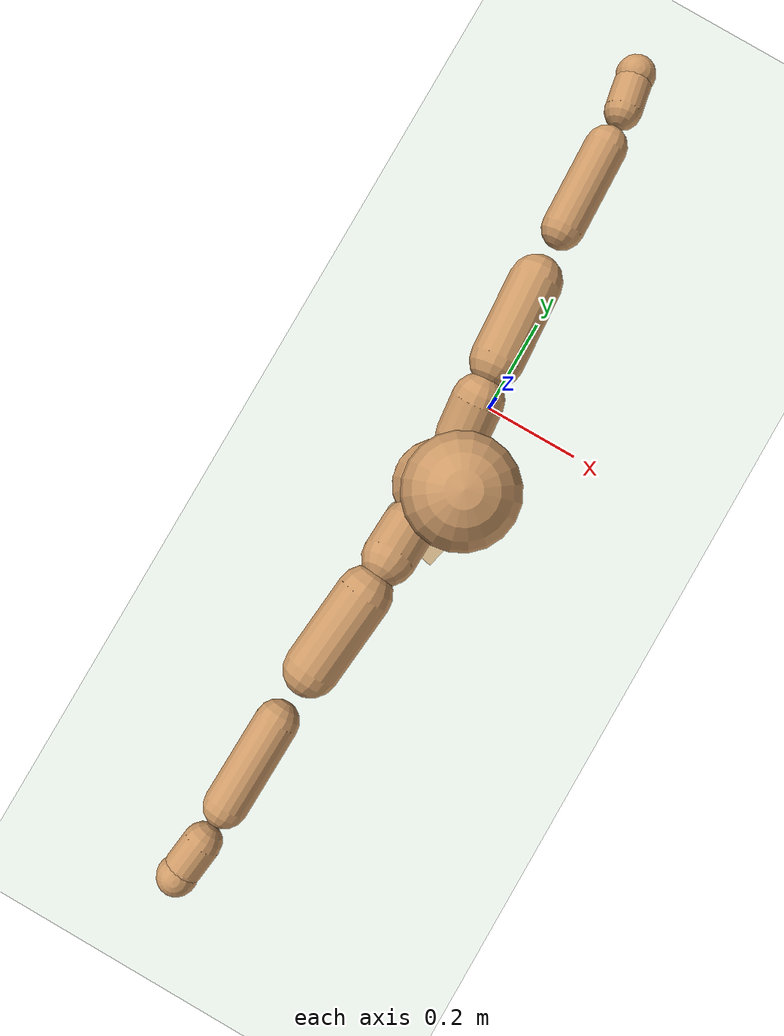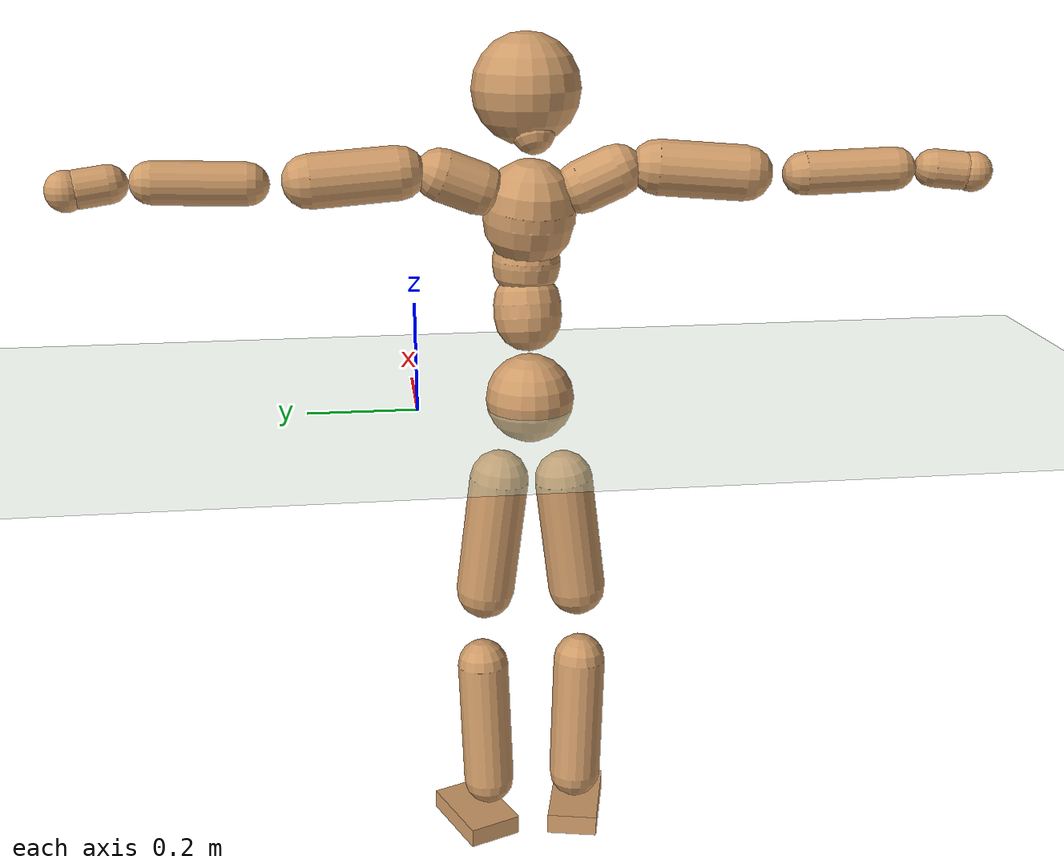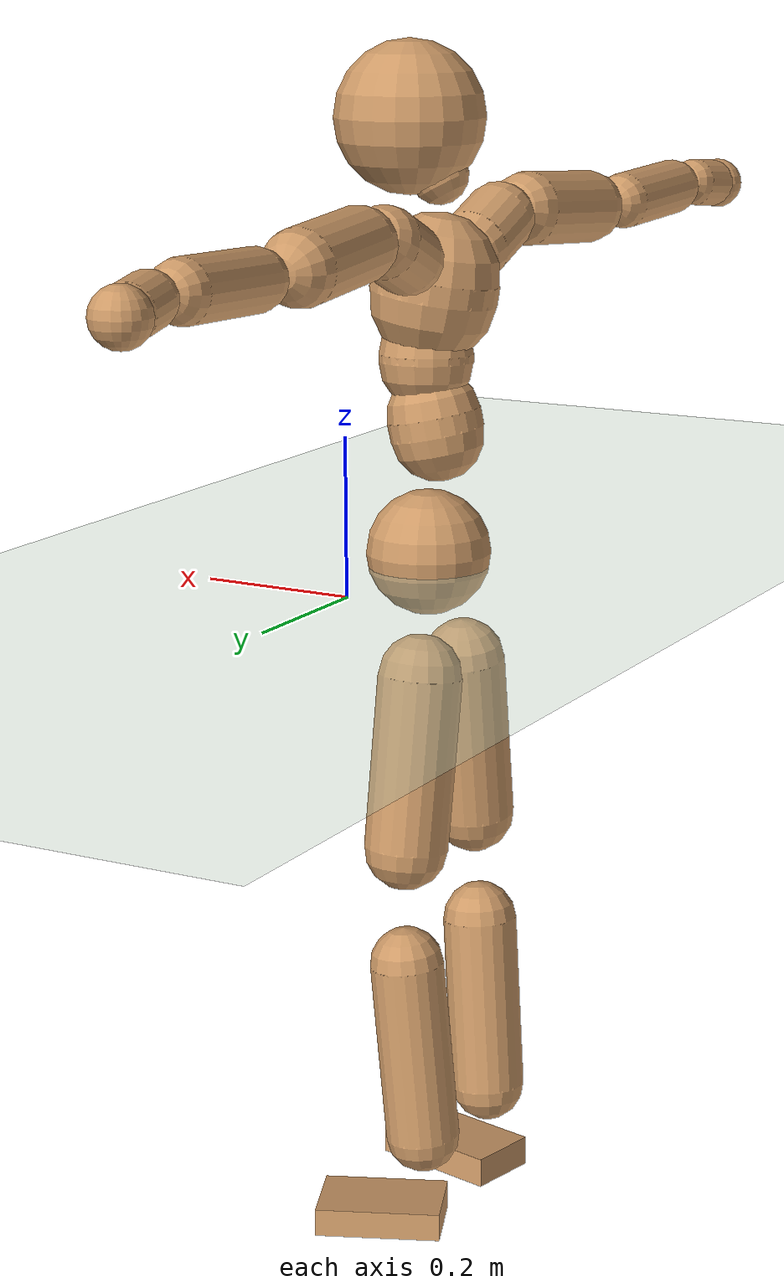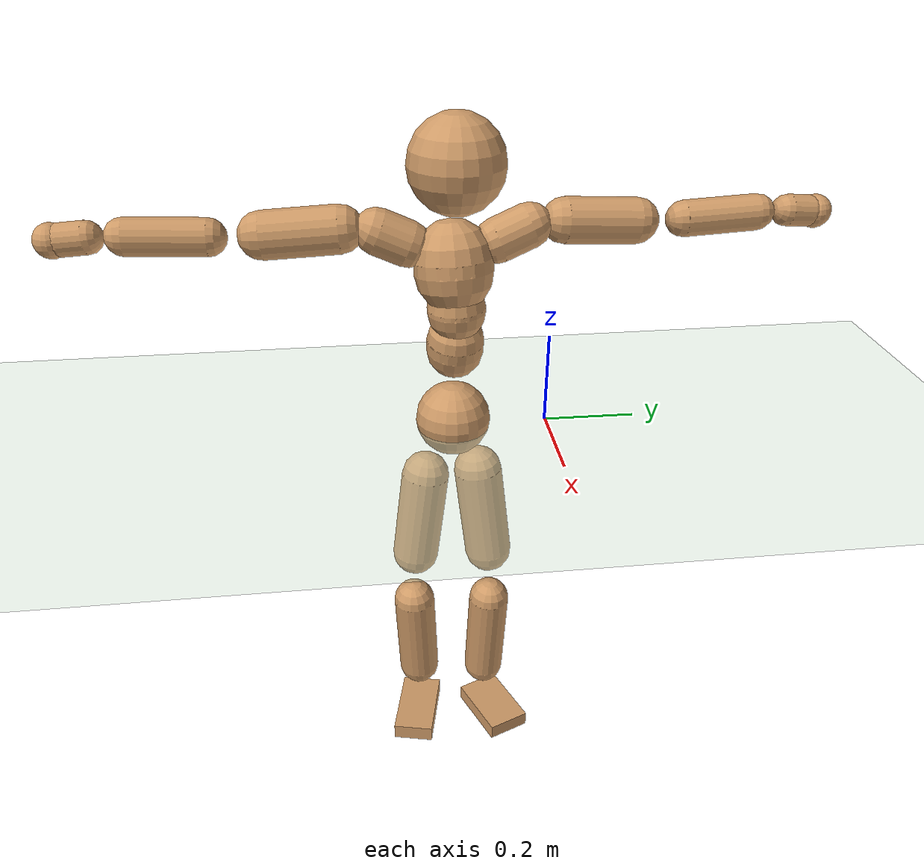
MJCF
<mujoco model="humanoid">
  <compiler coordinate="local"/>
  <default>
    <joint damping="0.0" armature="0.01" stiffness="0.0" limited="true"/>
    <geom conaffinity="1" condim="3" contype="7" margin="0.001" rgba="0.8 0.6 .4 1"/>
  </default>
  <asset>
    <texture type="skybox" builtin="gradient" rgb1=".4 .5 .6" rgb2="0 0 0" width="100" height="100"/>
    <texture builtin="flat" height="1278" mark="cross" markrgb="1 1 1" name="texgeom" random="0.01" rgb1="0.8 0.6 0.4" rgb2="0.8 0.6 0.4" type="cube" width="127"/>
    <texture builtin="checker" height="100" name="texplane" rgb1="0 0 0" rgb2="0.8 0.8 0.8" type="2d" width="100"/>
    <material name="MatPlane" reflectance="0.5" shininess="1" specular="1" texrepeat="60 60" texture="texplane"/>
    <material name="geom" texture="texgeom" texuniform="true"/>
  </asset>
  <worldbody>
    <light cutoff="100" diffuse="1 1 1" dir="-0 0 -1.3" directional="true" exponent="1" pos="0 0 1.3" specular=".1 .1 .1"/>
    <geom conaffinity="1" condim="3" name="floor" pos="0 0 0" rgba="0.8 0.9 0.8 1" size="100 100 .2" type="plane" material="MatPlane"/>
    <body name="Pelvis" pos="-0.0016 -0.2052 0.0162">
      <freejoint name="Pelvis"/>
      <geom type="sphere" contype="1" conaffinity="1" density="500" size="0.0813" pos="0.0000 0.0000 0.0000" name="Pelvis"/>
      <body name="L_Hip" pos="-0.0217 0.0508 -0.0739">
        <joint name="L_Hip_x" type="hinge" pos="0 0 0" axis="1 0 0" stiffness="800" damping="80" armature="0.02" range="-180.0000 180.0000"/>
        <joint name="L_Hip_y" type="hinge" pos="0 0 0" axis="0 1 0" stiffness="800" damping="80" armature="0.02" range="-180.0000 180.0000"/>
        <joint name="L_Hip_z" type="hinge" pos="0 0 0" axis="0 0 1" stiffness="800" damping="80" armature="0.02" range="-180.0000 180.0000"/>
        <geom type="capsule" contype="1" conaffinity="1" density="500" fromto="0.0023 0.0092 -0.0755 0.0093 0.0367 -0.3019" size="0.0546" name="L_Hip"/>
        <body name="L_Knee" pos="0.0116 0.0459 -0.3773">
          <joint name="L_Knee_x" type="hinge" pos="0 0 0" axis="1 0 0" stiffness="800" damping="80" armature="0.02" range="-180.0000 180.0000"/>
          <joint name="L_Knee_y" type="hinge" pos="0 0 0" axis="0 1 0" stiffness="800" damping="80" armature="0.02" range="-180.0000 180.0000"/>
          <joint name="L_Knee_z" type="hinge" pos="0 0 0" axis="0 0 1" stiffness="800" damping="80" armature="0.02" range="-180.0000 180.0000"/>
          <geom type="capsule" contype="1" conaffinity="1" density="500" fromto="-0.0061 -0.0024 -0.0810 -0.0245 -0.0097 -0.3238" size="0.0486" name="L_Knee"/>
          <body name="L_Ankle" pos="-0.0306 -0.0122 -0.4048">
            <joint name="L_Ankle_x" type="hinge" pos="0 0 0" axis="1 0 0" stiffness="800" damping="80" armature="0.02" range="-180.0000 180.0000"/>
            <joint name="L_Ankle_y" type="hinge" pos="0 0 0" axis="0 1 0" stiffness="800" damping="80" armature="0.02" range="-180.0000 180.0000"/>
            <joint name="L_Ankle_z" type="hinge" pos="0 0 0" axis="0 0 1" stiffness="800" damping="80" armature="0.02" range="-180.0000 180.0000"/>
            <geom type="box" contype="1" conaffinity="1" density="500" pos="0.0576 0.0233 -0.0289" size="0.0829 0.052 0.0186" quat="0.9815 0.0000 0.0000 0.1913" name="L_Ankle"/>
            <body name="L_Toe" pos="0.1152 0.0467 -0.0578">
              <joint name="L_Toe_x" type="hinge" pos="0 0 0" axis="1 0 0" stiffness="500" damping="50" armature="0.02" range="-180.0000 180.0000"/>
              <joint name="L_Toe_y" type="hinge" pos="0 0 0" axis="0 1 0" stiffness="500" damping="50" armature="0.02" range="-180.0000 180.0000"/>
              <joint name="L_Toe_z" type="hinge" pos="0 0 0" axis="0 0 1" stiffness="500" damping="50" armature="0.02" range="-180.0000 180.0000"/>
              <geom type="box" contype="1" conaffinity="1" density="500" pos="0.0000 0.0000 0.0298" size="0.001 0.0025 0.001" quat="0.9807 0.0000 0.0000 0.1956" name="L_Toe"/>
            </body>
          </body>
        </body>
      </body>
      <body name="R_Hip" pos="-0.0187 -0.052 -0.0817">
        <joint name="R_Hip_x" type="hinge" pos="0 0 0" axis="1 0 0" stiffness="800" damping="80" armature="0.02" range="-180.0000 180.0000"/>
        <joint name="R_Hip_y" type="hinge" pos="0 0 0" axis="0 1 0" stiffness="800" damping="80" armature="0.02" range="-180.0000 180.0000"/>
        <joint name="R_Hip_z" type="hinge" pos="0 0 0" axis="0 0 1" stiffness="800" damping="80" armature="0.02" range="-180.0000 180.0000"/>
        <geom type="capsule" contype="1" conaffinity="1" density="500" fromto="-0.0003 -0.0088 -0.0735 -0.0011 -0.0353 -0.2941" size="0.0538" name="R_Hip"/>
        <body name="R_Knee" pos="-0.0014 -0.0442 -0.3676">
          <joint name="R_Knee_x" type="hinge" pos="0 0 0" axis="1 0 0" stiffness="800" damping="80" armature="0.02" range="-180.0000 180.0000"/>
          <joint name="R_Knee_y" type="hinge" pos="0 0 0" axis="0 1 0" stiffness="800" damping="80" armature="0.02" range="-180.0000 180.0000"/>
          <joint name="R_Knee_z" type="hinge" pos="0 0 0" axis="0 0 1" stiffness="800" damping="80" armature="0.02" range="-180.0000 180.0000"/>
          <geom type="capsule" contype="1" conaffinity="1" density="500" fromto="-0.0058 0.0033 -0.0790 -0.0232 0.0134 -0.3161" size="0.0496" name="R_Knee"/>
          <body name="R_Ankle" pos="-0.0289 0.0167 -0.3952">
            <joint name="R_Ankle_x" type="hinge" pos="0 0 0" axis="1 0 0" stiffness="800" damping="80" armature="0.02" range="-180.0000 180.0000"/>
            <joint name="R_Ankle_y" type="hinge" pos="0 0 0" axis="0 1 0" stiffness="800" damping="80" armature="0.02" range="-180.0000 180.0000"/>
            <joint name="R_Ankle_z" type="hinge" pos="0 0 0" axis="0 0 1" stiffness="800" damping="80" armature="0.02" range="-180.0000 180.0000"/>
            <geom type="box" contype="1" conaffinity="1" density="500" pos="0.0625 -0.0144 -0.0296" size="0.0885 0.0482 0.02" quat="0.9936 0.0000 0.0000 -0.1130" name="R_Ankle"/>
            <body name="R_Toe" pos="0.1249 -0.0288 -0.0592">
              <joint name="R_Toe_x" type="hinge" pos="0 0 0" axis="1 0 0" stiffness="500" damping="50" armature="0.02" range="-180.0000 180.0000"/>
              <joint name="R_Toe_y" type="hinge" pos="0 0 0" axis="0 1 0" stiffness="500" damping="50" armature="0.02" range="-180.0000 180.0000"/>
              <joint name="R_Toe_z" type="hinge" pos="0 0 0" axis="0 0 1" stiffness="500" damping="50" armature="0.02" range="-180.0000 180.0000"/>
              <geom type="box" contype="1" conaffinity="1" density="500" pos="0.0000 0.0000 0.0310" size="0.0009 0.0024 0.0011" quat="0.9946 0.0000 0.0000 -0.1038" name="R_Toe"/>
            </body>
          </body>
        </body>
      </body>
      <body name="Torso" pos="-0.0268 0.004 0.108">
        <joint name="Torso_x" type="hinge" pos="0 0 0" axis="1 0 0" stiffness="1000" damping="100" armature="0.02" range="-180.0000 180.0000"/>
        <joint name="Torso_y" type="hinge" pos="0 0 0" axis="0 1 0" stiffness="1000" damping="100" armature="0.02" range="-180.0000 180.0000"/>
        <joint name="Torso_z" type="hinge" pos="0 0 0" axis="0 0 1" stiffness="1000" damping="100" armature="0.02" range="-180.0000 180.0000"/>
        <geom type="capsule" contype="1" conaffinity="1" density="500" fromto="0.0151 0.0021 0.0725 0.0101 0.0014 0.0483" size="0.060729" name="Torso"/>
        <body name="Spine" pos="0.0252 0.0034 0.1209">
          <joint name="Spine_x" type="hinge" pos="0 0 0" axis="1 0 0" stiffness="1000" damping="100" armature="0.02" range="-180.0000 180.0000"/>
          <joint name="Spine_y" type="hinge" pos="0 0 0" axis="0 1 0" stiffness="1000" damping="100" armature="0.02" range="-180.0000 180.0000"/>
          <joint name="Spine_z" type="hinge" pos="0 0 0" axis="0 0 1" stiffness="1000" damping="100" armature="0.02" range="-180.0000 180.0000"/>
          <geom type="capsule" contype="1" conaffinity="1" density="500" fromto="0.0002 -0.0010 0.0293 0.0001 -0.0007 0.0195" size="0.061008" name="Spine"/>
          <body name="Chest" pos="0.0003 -0.0017 0.0489">
            <joint name="Chest_x" type="hinge" pos="0 0 0" axis="1 0 0" stiffness="1000" damping="100" armature="0.02" range="-180.0000 180.0000"/>
            <joint name="Chest_y" type="hinge" pos="0 0 0" axis="0 1 0" stiffness="1000" damping="100" armature="0.02" range="-180.0000 180.0000"/>
            <joint name="Chest_z" type="hinge" pos="0 0 0" axis="0 0 1" stiffness="1000" damping="100" armature="0.02" range="-180.0000 180.0000"/>
            <geom type="capsule" contype="1" conaffinity="1" density="500" fromto="-0.0118 -0.0047 0.0782 -0.0079 -0.0032 0.0521" size="0.081747" name="Chest"/>
            <body name="Neck" pos="-0.0221 -0.0125 0.1875">
              <joint name="Neck_x" type="hinge" pos="0 0 0" axis="1 0 0" stiffness="500" damping="50" armature="0.02" range="-180.0000 180.0000"/>
              <joint name="Neck_y" type="hinge" pos="0 0 0" axis="0 1 0" stiffness="500" damping="50" armature="0.02" range="-180.0000 180.0000"/>
              <joint name="Neck_z" type="hinge" pos="0 0 0" axis="0 0 1" stiffness="500" damping="50" armature="0.02" range="-180.0000 180.0000"/>
              <geom type="capsule" contype="1" conaffinity="1" density="500" fromto="0.0090 0.0019 0.0174 0.0360 0.0077 0.0697" size="0.03813" name="Neck"/>
              <body name="Head" pos="0.0451 0.0097 0.0872">
                <joint name="Head_x" type="hinge" pos="0 0 0" axis="1 0 0" stiffness="500" damping="50" armature="0.02" range="-180.0000 180.0000"/>
                <joint name="Head_y" type="hinge" pos="0 0 0" axis="0 1 0" stiffness="500" damping="50" armature="0.02" range="-180.0000 180.0000"/>
                <joint name="Head_z" type="hinge" pos="0 0 0" axis="0 0 1" stiffness="500" damping="50" armature="0.02" range="-180.0000 180.0000"/>
                <geom type="sphere" contype="1" conaffinity="1" density="500" size="0.0966" pos="0.0000 0.0000 0.0000" name="Head"/>
              </body>
            </body>
            <body name="L_Thorax" pos="-0.0168 0.0624 0.1021">
              <joint name="L_Thorax_x" type="hinge" pos="0 0 0" axis="1 0 0" stiffness="500" damping="50" armature="0.02" range="-180.0000 180.0000"/>
              <joint name="L_Thorax_y" type="hinge" pos="0 0 0" axis="0 1 0" stiffness="500" damping="50" armature="0.02" range="-180.0000 180.0000"/>
              <joint name="L_Thorax_z" type="hinge" pos="0 0 0" axis="0 0 1" stiffness="500" damping="50" armature="0.02" range="-180.0000 180.0000"/>
              <geom type="capsule" contype="1" conaffinity="1" density="500" fromto="-0.0023 0.0221 0.0088 -0.0094 0.0884 0.0353" size="0.0461" name="L_Thorax"/>
              <body name="L_Shoulder" pos="-0.0117 0.1104 0.0441">
                <joint name="L_Shoulder_x" type="hinge" pos="0 0 0" axis="1 0 0" stiffness="500" damping="50" armature="0.02" range="-720.0000 720.0000"/>
                <joint name="L_Shoulder_y" type="hinge" pos="0 0 0" axis="0 1 0" stiffness="500" damping="50" armature="0.02" range="-720.0000 720.0000"/>
                <joint name="L_Shoulder_z" type="hinge" pos="0 0 0" axis="0 0 1" stiffness="500" damping="50" armature="0.02" range="-720.0000 720.0000"/>
                <geom type="capsule" contype="1" conaffinity="1" density="500" fromto="-0.0034 0.0504 -0.0032 -0.0138 0.2017 -0.0128" size="0.047" name="L_Shoulder"/>
                <body name="L_Elbow" pos="-0.0172 0.2521 -0.016">
                  <joint name="L_Elbow_x" type="hinge" pos="0 0 0" axis="1 0 0" stiffness="500" damping="50" armature="0.02" range="-720.0000 720.0000"/>
                  <joint name="L_Elbow_y" type="hinge" pos="0 0 0" axis="0 1 0" stiffness="500" damping="50" armature="0.02" range="-720.0000 720.0000"/>
                  <joint name="L_Elbow_z" type="hinge" pos="0 0 0" axis="0 0 1" stiffness="500" damping="50" armature="0.02" range="-720.0000 720.0000"/>
                  <geom type="capsule" contype="1" conaffinity="1" density="500" fromto="-0.0020 0.0520 0.0021 -0.0081 0.2082 0.0083" size="0.0372" name="L_Elbow"/>
                  <body name="L_Wrist" pos="-0.0101 0.2602 0.0103">
                    <joint name="L_Wrist_x" type="hinge" pos="0 0 0" axis="1 0 0" stiffness="300" damping="30" armature="0.02" range="-180.0000 180.0000"/>
                    <joint name="L_Wrist_y" type="hinge" pos="0 0 0" axis="0 1 0" stiffness="300" damping="30" armature="0.02" range="-180.0000 180.0000"/>
                    <joint name="L_Wrist_z" type="hinge" pos="0 0 0" axis="0 0 1" stiffness="300" damping="30" armature="0.02" range="-180.0000 180.0000"/>
                    <geom type="capsule" contype="1" conaffinity="1" density="500" fromto="-0.0031 0.0170 -0.0020 -0.0126 0.0680 -0.0081" size="0.0326" name="L_Wrist"/>
                    <body name="L_Hand" pos="-0.0157 0.085 -0.0101">
                      <joint name="L_Hand_x" type="hinge" pos="0 0 0" axis="1 0 0" stiffness="300" damping="30" armature="0.02" range="-180.0000 180.0000"/>
                      <joint name="L_Hand_y" type="hinge" pos="0 0 0" axis="0 1 0" stiffness="300" damping="30" armature="0.02" range="-180.0000 180.0000"/>
                      <joint name="L_Hand_z" type="hinge" pos="0 0 0" axis="0 0 1" stiffness="300" damping="30" armature="0.02" range="-180.0000 180.0000"/>
                      <geom type="sphere" contype="1" conaffinity="1" density="500" size="0.0346" pos="0.0000 0.0000 0.0000" name="L_Hand"/>
                    </body>
                  </body>
                </body>
              </body>
            </body>
            <body name="R_Thorax" pos="-0.0201 -0.0735 0.1013">
              <joint name="R_Thorax_x" type="hinge" pos="0 0 0" axis="1 0 0" stiffness="500" damping="50" armature="0.02" range="-180.0000 180.0000"/>
              <joint name="R_Thorax_y" type="hinge" pos="0 0 0" axis="0 1 0" stiffness="500" damping="50" armature="0.02" range="-180.0000 180.0000"/>
              <joint name="R_Thorax_z" type="hinge" pos="0 0 0" axis="0 0 1" stiffness="500" damping="50" armature="0.02" range="-180.0000 180.0000"/>
              <geom type="capsule" contype="1" conaffinity="1" density="500" fromto="-0.0006 -0.0204 0.0091 -0.0025 -0.0816 0.0363" size="0.0469" name="R_Thorax"/>
              <body name="R_Shoulder" pos="-0.0031 -0.102 0.0454">
                <joint name="R_Shoulder_x" type="hinge" pos="0 0 0" axis="1 0 0" stiffness="500" damping="50" armature="0.02" range="-720.0000 720.0000"/>
                <joint name="R_Shoulder_y" type="hinge" pos="0 0 0" axis="0 1 0" stiffness="500" damping="50" armature="0.02" range="-720.0000 720.0000"/>
                <joint name="R_Shoulder_z" type="hinge" pos="0 0 0" axis="0 0 1" stiffness="500" damping="50" armature="0.02" range="-720.0000 720.0000"/>
                <geom type="capsule" contype="1" conaffinity="1" density="500" fromto="-0.0046 -0.0511 -0.0037 -0.0185 -0.2043 -0.0148" size="0.0487" name="R_Shoulder"/>
                <body name="R_Elbow" pos="-0.0231 -0.2554 -0.0185">
                  <joint name="R_Elbow_x" type="hinge" pos="0 0 0" axis="1 0 0" stiffness="500" damping="50" armature="0.02" range="-720.0000 720.0000"/>
                  <joint name="R_Elbow_y" type="hinge" pos="0 0 0" axis="0 1 0" stiffness="500" damping="50" armature="0.02" range="-720.0000 720.0000"/>
                  <joint name="R_Elbow_z" type="hinge" pos="0 0 0" axis="0 0 1" stiffness="500" damping="50" armature="0.02" range="-720.0000 720.0000"/>
                  <geom type="capsule" contype="1" conaffinity="1" density="500" fromto="-0.0012 -0.0535 0.0020 -0.0049 -0.2140 0.0078" size="0.0382" name="R_Elbow"/>
                  <body name="R_Wrist" pos="-0.0061 -0.2675 0.0098">
                    <joint name="R_Wrist_x" type="hinge" pos="0 0 0" axis="1 0 0" stiffness="300" damping="30" armature="0.02" range="-180.0000 180.0000"/>
                    <joint name="R_Wrist_y" type="hinge" pos="0 0 0" axis="0 1 0" stiffness="300" damping="30" armature="0.02" range="-180.0000 180.0000"/>
                    <joint name="R_Wrist_z" type="hinge" pos="0 0 0" axis="0 0 1" stiffness="300" damping="30" armature="0.02" range="-180.0000 180.0000"/>
                    <geom type="capsule" contype="1" conaffinity="1" density="500" fromto="-0.0021 -0.0174 -0.0017 -0.0083 -0.0697 -0.0067" size="0.0335" name="R_Wrist"/>
                    <body name="R_Hand" pos="-0.0104 -0.0871 -0.0083">
                      <joint name="R_Hand_x" type="hinge" pos="0 0 0" axis="1 0 0" stiffness="300" damping="30" armature="0.02" range="-180.0000 180.0000"/>
                      <joint name="R_Hand_y" type="hinge" pos="0 0 0" axis="0 1 0" stiffness="300" damping="30" armature="0.02" range="-180.0000 180.0000"/>
                      <joint name="R_Hand_z" type="hinge" pos="0 0 0" axis="0 0 1" stiffness="300" damping="30" armature="0.02" range="-180.0000 180.0000"/>
                      <geom type="sphere" contype="1" conaffinity="1" density="500" size="0.0352" pos="0.0000 0.0000 0.0000" name="R_Hand"/>
                    </body>
                  </body>
                </body>
              </body>
            </body>
          </body>
        </body>
      </body>
    </body>
  </worldbody>
  <actuator>
    <motor name="L_Hip_x" joint="L_Hip_x" gear="500"/>
    <motor name="L_Hip_y" joint="L_Hip_y" gear="500"/>
    <motor name="L_Hip_z" joint="L_Hip_z" gear="500"/>
    <motor name="L_Knee_x" joint="L_Knee_x" gear="500"/>
    <motor name="L_Knee_y" joint="L_Knee_y" gear="500"/>
    <motor name="L_Knee_z" joint="L_Knee_z" gear="500"/>
    <motor name="L_Ankle_x" joint="L_Ankle_x" gear="500"/>
    <motor name="L_Ankle_y" joint="L_Ankle_y" gear="500"/>
    <motor name="L_Ankle_z" joint="L_Ankle_z" gear="500"/>
    <motor name="L_Toe_x" joint="L_Toe_x" gear="500"/>
    <motor name="L_Toe_y" joint="L_Toe_y" gear="500"/>
    <motor name="L_Toe_z" joint="L_Toe_z" gear="500"/>
    <motor name="R_Hip_x" joint="R_Hip_x" gear="500"/>
    <motor name="R_Hip_y" joint="R_Hip_y" gear="500"/>
    <motor name="R_Hip_z" joint="R_Hip_z" gear="500"/>
    <motor name="R_Knee_x" joint="R_Knee_x" gear="500"/>
    <motor name="R_Knee_y" joint="R_Knee_y" gear="500"/>
    <motor name="R_Knee_z" joint="R_Knee_z" gear="500"/>
    <motor name="R_Ankle_x" joint="R_Ankle_x" gear="500"/>
    <motor name="R_Ankle_y" joint="R_Ankle_y" gear="500"/>
    <motor name="R_Ankle_z" joint="R_Ankle_z" gear="500"/>
    <motor name="R_Toe_x" joint="R_Toe_x" gear="500"/>
    <motor name="R_Toe_y" joint="R_Toe_y" gear="500"/>
    <motor name="R_Toe_z" joint="R_Toe_z" gear="500"/>
    <motor name="Torso_x" joint="Torso_x" gear="500"/>
    <motor name="Torso_y" joint="Torso_y" gear="500"/>
    <motor name="Torso_z" joint="Torso_z" gear="500"/>
    <motor name="Spine_x" joint="Spine_x" gear="500"/>
    <motor name="Spine_y" joint="Spine_y" gear="500"/>
    <motor name="Spine_z" joint="Spine_z" gear="500"/>
    <motor name="Chest_x" joint="Chest_x" gear="500"/>
    <motor name="Chest_y" joint="Chest_y" gear="500"/>
    <motor name="Chest_z" joint="Chest_z" gear="500"/>
    <motor name="Neck_x" joint="Neck_x" gear="500"/>
    <motor name="Neck_y" joint="Neck_y" gear="500"/>
    <motor name="Neck_z" joint="Neck_z" gear="500"/>
    <motor name="Head_x" joint="Head_x" gear="500"/>
    <motor name="Head_y" joint="Head_y" gear="500"/>
    <motor name="Head_z" joint="Head_z" gear="500"/>
    <motor name="L_Thorax_x" joint="L_Thorax_x" gear="500"/>
    <motor name="L_Thorax_y" joint="L_Thorax_y" gear="500"/>
    <motor name="L_Thorax_z" joint="L_Thorax_z" gear="500"/>
    <motor name="L_Shoulder_x" joint="L_Shoulder_x" gear="500"/>
    <motor name="L_Shoulder_y" joint="L_Shoulder_y" gear="500"/>
    <motor name="L_Shoulder_z" joint="L_Shoulder_z" gear="500"/>
    <motor name="L_Elbow_x" joint="L_Elbow_x" gear="500"/>
    <motor name="L_Elbow_y" joint="L_Elbow_y" gear="500"/>
    <motor name="L_Elbow_z" joint="L_Elbow_z" gear="500"/>
    <motor name="L_Wrist_x" joint="L_Wrist_x" gear="500"/>
    <motor name="L_Wrist_y" joint="L_Wrist_y" gear="500"/>
    <motor name="L_Wrist_z" joint="L_Wrist_z" gear="500"/>
    <motor name="L_Hand_x" joint="L_Hand_x" gear="500"/>
    <motor name="L_Hand_y" joint="L_Hand_y" gear="500"/>
    <motor name="L_Hand_z" joint="L_Hand_z" gear="500"/>
    <motor name="R_Thorax_x" joint="R_Thorax_x" gear="500"/>
    <motor name="R_Thorax_y" joint="R_Thorax_y" gear="500"/>
    <motor name="R_Thorax_z" joint="R_Thorax_z" gear="500"/>
    <motor name="R_Shoulder_x" joint="R_Shoulder_x" gear="500"/>
    <motor name="R_Shoulder_y" joint="R_Shoulder_y" gear="500"/>
    <motor name="R_Shoulder_z" joint="R_Shoulder_z" gear="500"/>
    <motor name="R_Elbow_x" joint="R_Elbow_x" gear="500"/>
    <motor name="R_Elbow_y" joint="R_Elbow_y" gear="500"/>
    <motor name="R_Elbow_z" joint="R_Elbow_z" gear="500"/>
    <motor name="R_Wrist_x" joint="R_Wrist_x" gear="500"/>
    <motor name="R_Wrist_y" joint="R_Wrist_y" gear="500"/>
    <motor name="R_Wrist_z" joint="R_Wrist_z" gear="500"/>
    <motor name="R_Hand_x" joint="R_Hand_x" gear="500"/>
    <motor name="R_Hand_y" joint="R_Hand_y" gear="500"/>
    <motor name="R_Hand_z" joint="R_Hand_z" gear="500"/>
  </actuator>
  <contact>
    <exclude body1="Torso" body2="Chest"/>
    <exclude body1="Head" body2="Chest"/>
    <exclude body1="R_Knee" body2="R_Toe"/>
    <exclude body1="R_Knee" body2="L_Ankle"/>
    <exclude body1="R_Knee" body2="L_Toe"/>
    <exclude body1="L_Knee" body2="L_Toe"/>
    <exclude body1="L_Knee" body2="R_Ankle"/>
    <exclude body1="L_Knee" body2="R_Toe"/>
    <exclude body1="L_Shoulder" body2="Chest"/>
    <exclude body1="R_Shoulder" body2="Chest"/>
  </contact>
  <sensor/>
  <size njmax="700" nconmax="700"/>
</mujoco>
